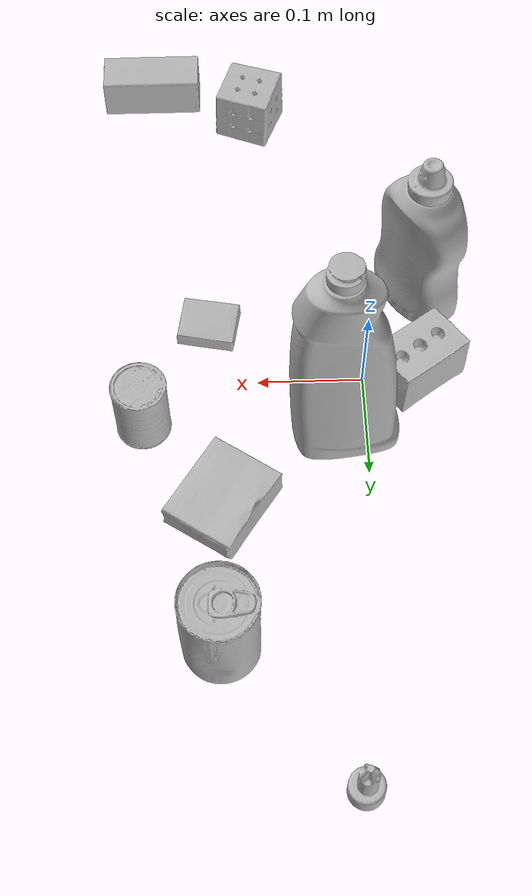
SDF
<sdf version="1.4">
  <world name="default">
    <light name="light1" type="point">
      <pose>0 0 1 0 0 0</pose>
      <diffuse>3 3 3 1</diffuse>
      <specular>3 3 3 1</specular>
    </light>
    <light name="light2" type="point">
      <pose>0 0.5 2 0 0 0</pose>
      <diffuse>1 1 1 1</diffuse>
      <specular>1 1 1 1</specular>
    </light>
    <light name="light3" type="point">
      <pose>0 0.5 2 0 0 0</pose>
      <diffuse>3 3 3 1</diffuse>
      <specular>3 3 3 1</specular>
    </light>
    <scene>
      <ambient>0.7 0.7 0.7</ambient>
    </scene>
    <model name="bottle1">
      <link name="link_bottle1">
        <collision name="default">
          <geometry>
            <mesh>
              <uri>model://bleach_cleanser/collision_meshes/collision.obj</uri>
              <scale>1.0 1.0 1.0</scale>
            </mesh>
          </geometry>
          <surface>
            <friction>
              <ode>
                <mu>0.5</mu>
                <mu2>0.5</mu2>
              </ode>
            </friction>
          <contact>
        <ode>
            <max_vel>0</max_vel>
            <min_depth>0.0001</min_depth>
            <kp>1e8</kp>
        </ode>
    </contact></surface>
        </collision>
        <visual name="default">
          <geometry>
            <mesh>
              <uri>model://bleach_cleanser/visual_meshes/visual.dae</uri>
              <scale>1.0 1.0 1.0</scale>
            </mesh>
          </geometry>
        </visual>
        <inertial>
          <mass>1.1050143241882324</mass>
          <pose>0.00012193183647468686 0.0037838828284293413 -0.02442161738872528 -0.07381670616137478 0.0004201160282461273 -0.006875061809122935</pose>
          <inertia>
            <ixx>0.0053782654</ixx>
            <iyy>0.005011756</iyy>
            <izz>0.00091954356</izz>
            <ixy>0</ixy>
            <ixz>0</ixz>
            <iyz>0</iyz>
          </inertia>
        </inertial>
      </link>
      <pose>0.021821454167366028 0.0533442460000515 0.12578415870666504 -0.0002012459013456211 1.482824406102297e-05 -1.4107252647604132</pose>
    </model>
    <model name="bottle2">
      <link name="link_bottle2">
        <collision name="default">
          <geometry>
            <mesh>
              <uri>model://mustard_bottle/collision_meshes/collision.obj</uri>
              <scale>1.0 1.0 1.0</scale>
            </mesh>
          </geometry>
          <surface>
            <friction>
              <ode>
                <mu>0.5</mu>
                <mu2>0.5</mu2>
              </ode>
            </friction>
          <contact>
        <ode>
            <max_vel>0</max_vel>
            <min_depth>0.0001</min_depth>
            <kp>1e8</kp>
        </ode>
    </contact></surface>
        </collision>
        <visual name="default">
          <geometry>
            <mesh>
              <uri>model://mustard_bottle/visual_meshes/visual.dae</uri>
              <scale>1.0 1.0 1.0</scale>
            </mesh>
          </geometry>
        </visual>
        <inertial>
          <mass>0.622285008430481</mass>
          <pose>0.0005032453336752951 -0.0001564739941386506 -0.0174757931381464 0.0004182326458762318 0.0009465782998157723 0.024853714910341117</pose>
          <inertia>
            <ixx>0.0017280002</ixx>
            <iyy>0.0015161741</iyy>
            <izz>0.00045541534</izz>
            <ixy>0</ixy>
            <ixz>0</ixz>
            <iyz>0</iyz>
          </inertia>
        </inertial>
      </link>
      <pose>-0.057557884603738785 -0.09941054880619049 0.09615196287631989 1.498755914927756e-05 1.6555404262961634e-05 -2.591707452375355</pose>
    </model>
    <model name="toy1">
      <link name="link_toy1">
        <collision name="default">
          <geometry>
            <mesh>
              <uri>model://foam_brick/collision_meshes/collision.obj</uri>
              <scale>1.0 1.0 1.0</scale>
            </mesh>
          </geometry>
          <surface>
            <friction>
              <ode>
                <mu>0.5</mu>
                <mu2>0.5</mu2>
              </ode>
            </friction>
          <contact>
        <ode>
            <max_vel>0</max_vel>
            <min_depth>0.0001</min_depth>
            <kp>1e8</kp>
        </ode>
    </contact></surface>
        </collision>
        <visual name="default">
          <geometry>
            <mesh>
              <uri>model://foam_brick/visual_meshes/visual.dae</uri>
              <scale>1.0 1.0 1.0</scale>
            </mesh>
          </geometry>
        </visual>
        <inertial>
          <mass>0.1664208173751831</mass>
          <pose>-0.00025224717683158815 0.0003458438441157341 -0.00025321010616607964 -0.2940189404221327 0.017274440573450563 -0.0007449871782747126</pose>
          <inertia>
            <ixx>7.269573e-05</ixx>
            <iyy>0.00011606247</iyy>
            <izz>0.000117537464</izz>
            <ixy>0</ixy>
            <ixz>0</ixz>
            <iyz>0</iyz>
          </inertia>
        </inertial>
      </link>
      <pose>-0.052197232842445374 -0.005302338395267725 0.025922808796167374 0.013416763475726269 0.004153028990010648 0.6124379969469932</pose>
    </model>
    <model name="toy2">
      <link name="link_toy2">
        <collision name="default">
          <geometry>
            <mesh>
              <uri>model://d_toy_airplane/collision_meshes/collision.obj</uri>
              <scale>1.0 1.0 1.0</scale>
            </mesh>
          </geometry>
          <surface>
            <friction>
              <ode>
                <mu>0.5</mu>
                <mu2>0.5</mu2>
              </ode>
            </friction>
          <contact>
        <ode>
            <max_vel>0</max_vel>
            <min_depth>0.0001</min_depth>
            <kp>1e8</kp>
        </ode>
    </contact></surface>
        </collision>
        <visual name="default">
          <geometry>
            <mesh>
              <uri>model://d_toy_airplane/visual_meshes/visual.dae</uri>
              <scale>1.0 1.0 1.0</scale>
            </mesh>
          </geometry>
        </visual>
        <inertial>
          <mass>0.021938346326351166</mass>
          <pose>9.410325583303347e-05 -5.8093231928069144e-05 -0.01172809861600399 0.0002669142468379238 0.0046790018194854816 0.5194488187392164</pose>
          <inertia>
            <ixx>6.5766894e-06</ixx>
            <iyy>6.581649e-06</iyy>
            <izz>1.9855454e-06</izz>
            <ixy>0</ixy>
            <ixz>0</ixz>
            <iyz>0</iyz>
          </inertia>
        </inertial>
      </link>
      <pose>0.023883897811174393 0.3844776451587677 0.033339377492666245 0.00023131754014858844 -2.0791759289230246e-05 1.139834895254777</pose>
    </model>
    <model name="can1">
      <link name="link_can1">
        <collision name="default">
          <geometry>
            <mesh>
              <uri>model://tomato_soup_can/collision_meshes/collision.obj</uri>
              <scale>1.0 1.0 1.0</scale>
            </mesh>
          </geometry>
          <surface>
            <friction>
              <ode>
                <mu>0.5</mu>
                <mu2>0.5</mu2>
              </ode>
            </friction>
          <contact>
        <ode>
            <max_vel>0</max_vel>
            <min_depth>0.0001</min_depth>
            <kp>1e8</kp>
        </ode>
    </contact></surface>
        </collision>
        <visual name="default">
          <geometry>
            <mesh>
              <uri>model://tomato_soup_can/visual_meshes/visual.dae</uri>
              <scale>1.0 1.0 1.0</scale>
            </mesh>
          </geometry>
        </visual>
        <inertial>
          <mass>0.39673706889152527</mass>
          <pose>0.00012652271834667772 0.00010805520287249237 -0.0017973972717300057 0.007020066809275346 0.000422998323222239 -0.009903841103285913</pose>
          <inertia>
            <ixx>0.00043498844</ixx>
            <iyy>0.00043247454</iyy>
            <izz>0.00022545052</izz>
            <ixy>0</ixy>
            <ixz>0</ixz>
            <iyz>0</iyz>
          </inertia>
        </inertial>
      </link>
      <pose>0.13616666197776794 0.2624051868915558 0.05127401649951935 -5.20267581660529e-07 -9.302878685718991e-07 -1.86662037924379</pose>
    </model>
    <model name="can2">
      <link name="link_can2">
        <collision name="default">
          <geometry>
            <mesh>
              <uri>model://master_chef_can/collision_meshes/collision.obj</uri>
              <scale>0.5 0.5 0.5</scale>
            </mesh>
          </geometry>
          <surface>
            <friction>
              <ode>
                <mu>0.5</mu>
                <mu2>0.5</mu2>
              </ode>
            </friction>
          <contact>
        <ode>
            <max_vel>0</max_vel>
            <min_depth>0.0001</min_depth>
            <kp>1e8</kp>
        </ode>
    </contact></surface>
        </collision>
        <visual name="default">
          <geometry>
            <mesh>
              <uri>model://master_chef_can/visual_meshes/visual.dae</uri>
              <scale>0.5 0.5 0.5</scale>
            </mesh>
          </geometry>
        </visual>
        <inertial>
          <mass>0.08835740387439728</mass>
          <pose>-4.6619654312962666e-05 1.3926853625889635e-07 -5.079947004560381e-05 -0.0017995147102642629 0.0006479189020740588 -0.6102650934471076</pose>
          <inertia>
            <ixx>5.1859814e-05</ixx>
            <iyy>5.1478128e-05</iyy>
            <izz>2.8656508e-05</izz>
            <ixy>0</ixy>
            <ixz>0</ixz>
            <iyz>0</iyz>
          </inertia>
        </inertial>
      </link>
      <pose>0.2069854438304901 0.0439758263528347 0.03530200198292732 -1.356630663155505e-06 -1.1585817431201103e-06 -1.9949119584239345</pose>
    </model>
    <model name="box1">
      <link name="link_box1">
        <collision name="default">
          <geometry>
            <mesh>
              <uri>model://wood_block/collision_meshes/collision.obj</uri>
              <scale>0.5 0.5 0.5</scale>
            </mesh>
          </geometry>
          <surface>
            <friction>
              <ode>
                <mu>0.5</mu>
                <mu2>0.5</mu2>
              </ode>
            </friction>
          <contact>
        <ode>
            <max_vel>0</max_vel>
            <min_depth>0.0001</min_depth>
            <kp>1e8</kp>
        </ode>
    </contact></surface>
        </collision>
        <visual name="default">
          <geometry>
            <mesh>
              <uri>model://wood_block/visual_meshes/visual.dae</uri>
              <scale>0.5 0.5 0.5</scale>
            </mesh>
          </geometry>
        </visual>
        <inertial>
          <mass>0.15377527475357056</mass>
          <pose>-2.9066577553749084e-06 -0.000285404734313488 0.00013204291462898254 -0.05220825990774677 -0.0051926953585221414 -0.0068613782788382646</pose>
          <inertia>
            <ixx>5.1443654e-05</ixx>
            <iyy>0.00016251049</iyy>
            <izz>0.00016190263</izz>
            <ixy>0</ixy>
            <ixz>0</ixz>
            <iyz>0</iyz>
          </inertia>
        </inertial>
      </link>
      <pose>0.20626424252986908 -0.37794196605682373 0.022629264742136 -0.0052086519672491505 0.00571870505739686 -3.136426967522944</pose>
    </model>
    <model name="box2">
      <link name="link_box2">
        <collision name="default">
          <geometry>
            <mesh>
              <uri>model://rubiks_cube/collision_meshes/collision.obj</uri>
              <scale>1.0 1.0 1.0</scale>
            </mesh>
          </geometry>
          <surface>
            <friction>
              <ode>
                <mu>0.5</mu>
                <mu2>0.5</mu2>
              </ode>
            </friction>
          <contact>
        <ode>
            <max_vel>0</max_vel>
            <min_depth>0.0001</min_depth>
            <kp>1e8</kp>
        </ode>
    </contact></surface>
        </collision>
        <visual name="default">
          <geometry>
            <mesh>
              <uri>model://rubiks_cube/visual_meshes/visual.dae</uri>
              <scale>1.0 1.0 1.0</scale>
            </mesh>
          </geometry>
        </visual>
        <inertial>
          <mass>0.2856966555118561</mass>
          <pose>2.6721041649580002e-05 5.2569666877388954e-05 -7.264316082000732e-06 -0.05467209736319516 -0.09813912050272719 -0.034455106160143086</pose>
          <inertia>
            <ixx>0.00015786657</ixx>
            <iyy>0.00015713037</iyy>
            <izz>0.00015917476</izz>
            <ixy>0</ixy>
            <ixz>0</ixz>
            <iyz>0</iyz>
          </inertia>
        </inertial>
      </link>
      <pose>0.1000915989279747 -0.33973443508148193 0.028678985312581062 -2.6557958891781783e-06 1.1717499231529318e-08 -1.9141607380202703</pose>
    </model>
    <model name="box3">
      <link name="link_box3">
        <collision name="default">
          <geometry>
            <mesh>
              <uri>model://gelatin_box/collision_meshes/collision.obj</uri>
              <scale>1.0 1.0 1.0</scale>
            </mesh>
          </geometry>
          <surface>
            <friction>
              <ode>
                <mu>0.5</mu>
                <mu2>0.5</mu2>
              </ode>
            </friction>
          <contact>
        <ode>
            <max_vel>0</max_vel>
            <min_depth>0.0001</min_depth>
            <kp>1e8</kp>
        </ode>
    </contact></surface>
        </collision>
        <visual name="default">
          <geometry>
            <mesh>
              <uri>model://gelatin_box/visual_meshes/visual.dae</uri>
              <scale>1.0 1.0 1.0</scale>
            </mesh>
          </geometry>
        </visual>
        <inertial>
          <mass>0.24612535536289215</mass>
          <pose>0.0004319618456065655 0.00011156871914863586 -0.00036403213744051754 -0.0010503719772071295 -0.004755818223732799 0.016440561334178715</pose>
          <inertia>
            <ixx>0.00017374444</ixx>
            <iyy>0.00012410474</iyy>
            <izz>0.00026447774</izz>
            <ixy>0</ixy>
            <ixz>0</ixz>
            <iyz>0</iyz>
          </inertia>
        </inertial>
      </link>
      <pose>0.1342247724533081 0.12900592386722565 0.015168311074376106 0.005597438937433885 -0.007304586989321625 2.5424265139844326</pose>
    </model>
    <model name="box4">
      <link name="link_box4">
        <collision name="default">
          <geometry>
            <mesh>
              <uri>model://pudding_box/collision_meshes/collision.obj</uri>
              <scale>0.5 0.5 0.5</scale>
            </mesh>
          </geometry>
          <surface>
            <friction>
              <ode>
                <mu>0.5</mu>
                <mu2>0.5</mu2>
              </ode>
            </friction>
          <contact>
        <ode>
            <max_vel>0</max_vel>
            <min_depth>0.0001</min_depth>
            <kp>1e8</kp>
        </ode>
    </contact></surface>
        </collision>
        <visual name="default">
          <geometry>
            <mesh>
              <uri>model://pudding_box/visual_meshes/visual.dae</uri>
              <scale>0.5 0.5 0.5</scale>
            </mesh>
          </geometry>
        </visual>
        <inertial>
          <mass>0.025328172370791435</mass>
          <pose>0.00024474109522998333 0.00040339428232982755 -0.0002594413817860186 0.00521310085836893 -0.006603797787762854 0.020079828890944847</pose>
          <inertia>
            <ixx>7.15805e-06</ixx>
            <iyy>4.8159864e-06</iyy>
            <izz>1.0570731e-05</izz>
            <ixy>0</ixy>
            <ixz>0</ixz>
            <iyz>0</iyz>
          </inertia>
        </inertial>
      </link>
      <pose>0.14591775834560394 -0.06273125112056732 0.009862902574241161 0.022348508507145363 -0.011391780723068064 -1.739746126674071</pose>
    </model>
  <physics type="ode">
      <max_contacts>50</max_contacts>
      <ode>
        <solver>
          <type>quick</type>
          <iters>75</iters>
        </solver>
        <constraints>
          <contact_max_correcting_vel>0</contact_max_correcting_vel>
          <contact_surface_layer>0</contact_surface_layer>
        </constraints>
      </ode>
    </physics></world>
</sdf>
